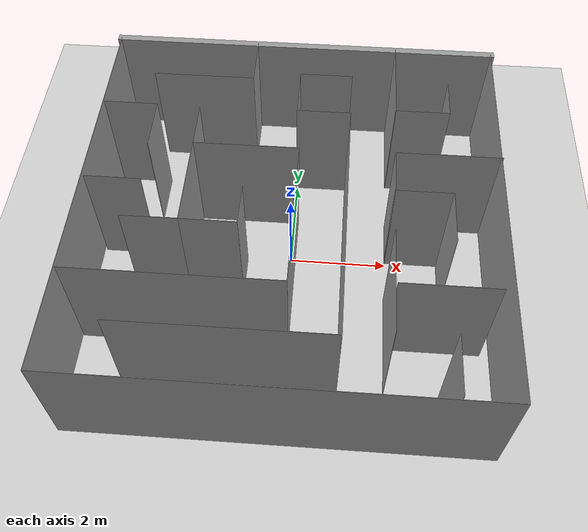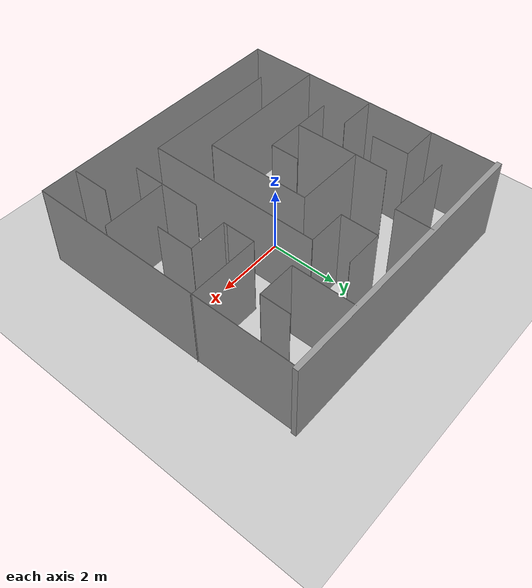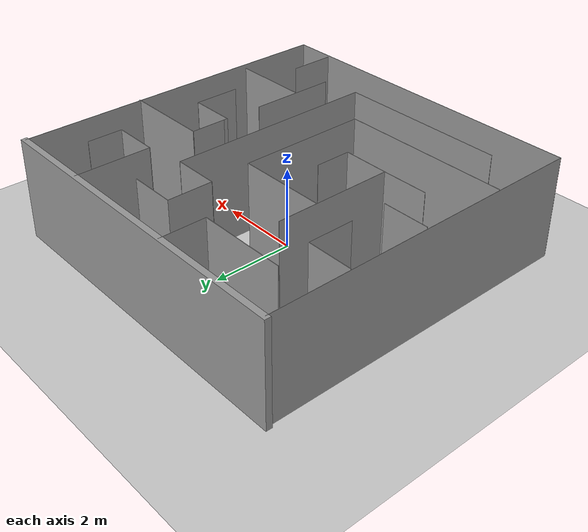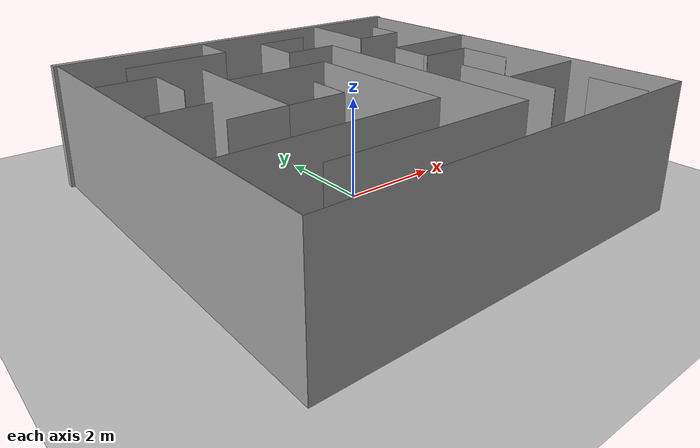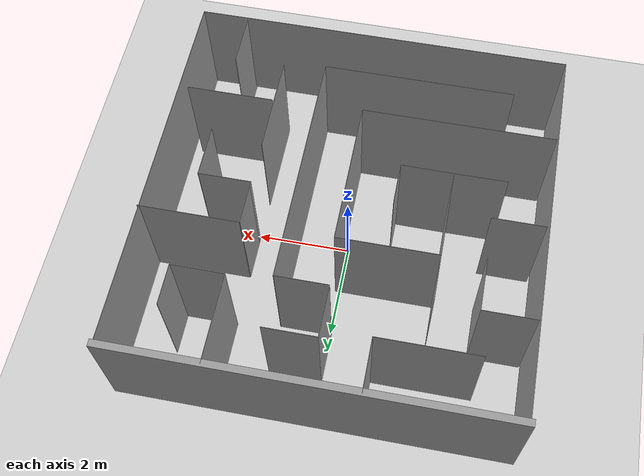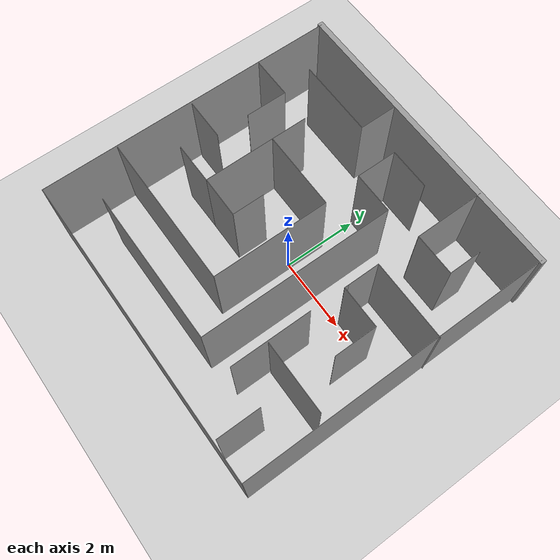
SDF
<sdf version='1.6'>
  <world name='default'>
    <!-- A global light source -->
    <include>
      <uri>model://sun</uri>
    </include>

    <!-- A ground plane -->
    <include>
      <uri>model://ground_plane</uri>
    </include>

    <physics type="ode">
      <real_time_update_rate>1000.0</real_time_update_rate>
      <max_step_size>0.001</max_step_size>
      <real_time_factor>1</real_time_factor>
      <ode>
        <solver>
          <type>quick</type>
          <iters>150</iters>
          <precon_iters>0</precon_iters>
          <sor>1.400000</sor>
          <use_dynamic_moi_rescaling>1</use_dynamic_moi_rescaling>
        </solver>
        <constraints>
          <cfm>0.00001</cfm>
          <erp>0.2</erp>
          <contact_max_correcting_vel>2000.000000</contact_max_correcting_vel>
          <contact_surface_layer>0.01000</contact_surface_layer>
        </constraints>
      </ode>
    </physics>

    <!-- Load world -->
    <include>
      <uri>model://laberinto</uri>
    </include>

    <scene>
      <ambient>0.4 0.4 0.4 1</ambient>
      <background>0.7 0.7 0.7 1</background>
      <shadows>false</shadows>
    </scene>

    <gui fullscreen='0'>
      <camera name='user_camera'>
        <pose>1.5 1.5 6.2 0 1.57079 1.57079</pose>
        <view_controller>orbit</view_controller>
      </camera>
    </gui>
  </world>
</sdf>

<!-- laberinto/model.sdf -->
<sdf version='1.7'>
  <model name='laberinto'>
    <pose>0.003 -0.01 0 0 -0 0</pose>
    <link name='Wall_0'>
      <collision name='Wall_0_Collision'>
        <geometry>
          <box>
            <size>8.25 0.15 2.5</size>
          </box>
        </geometry>
        <pose>0 0 1.25 0 -0 0</pose>
      </collision>
      <visual name='Wall_0_Visual'>
        <pose>0 0 1.25 0 -0 0</pose>
        <geometry>
          <box>
            <size>8.25 0.15 2.5</size>
          </box>
        </geometry>
        <material>
          <script>
            <uri>file://media/materials/scripts/gazebo.material</uri>
            <name>Gazebo/Grey</name>
          </script>
          <ambient>1 1 1 1</ambient>
        </material>
        <meta>
          <layer>0</layer>
        </meta>
      </visual>
      <pose>0 4.015 0 0 -0 0</pose>
    </link>
    <link name='Wall_1'>
      <collision name='Wall_1_Collision'>
        <geometry>
          <box>
            <size>8.11 0.01 2.5</size>
          </box>
        </geometry>
        <pose>0 0 1.25 0 -0 0</pose>
      </collision>
      <visual name='Wall_1_Visual'>
        <pose>0 0 1.25 0 -0 0</pose>
        <geometry>
          <box>
            <size>8.11 0.01 2.5</size>
          </box>
        </geometry>
        <material>
          <script>
            <uri>file://media/materials/scripts/gazebo.material</uri>
            <name>Gazebo/Grey</name>
          </script>
          <ambient>1 1 1 1</ambient>
        </material>
        <meta>
          <layer>0</layer>
        </meta>
      </visual>
      <pose>4.05 -0.035 0 0 -0 -1.5708</pose>
    </link>
    <link name='Wall_11'>
      <collision name='Wall_11_Collision'>
        <geometry>
          <box>
            <size>2.85957 0.01 2.5</size>
          </box>
        </geometry>
        <pose>0 0 1.25 0 -0 0</pose>
      </collision>
      <visual name='Wall_11_Visual'>
        <pose>0 0 1.25 0 -0 0</pose>
        <geometry>
          <box>
            <size>2.85957 0.01 2.5</size>
          </box>
        </geometry>
        <material>
          <script>
            <uri>file://media/materials/scripts/gazebo.material</uri>
            <name>Gazebo/Grey</name>
          </script>
          <ambient>1 1 1 1</ambient>
        </material>
        <meta>
          <layer>0</layer>
        </meta>
      </visual>
      <pose>-2.031 0.552 0 0 -0 -1.5708</pose>
    </link>
    <link name='Wall_12'>
      <collision name='Wall_12_Collision'>
        <geometry>
          <box>
            <size>1.10985 0.01 2.5</size>
          </box>
        </geometry>
        <pose>0 0 1.25 0 -0 0</pose>
      </collision>
      <visual name='Wall_12_Visual'>
        <pose>0 0 1.25 0 -0 0</pose>
        <geometry>
          <box>
            <size>1.10985 0.01 2.5</size>
          </box>
        </geometry>
        <material>
          <script>
            <uri>file://media/materials/scripts/gazebo.material</uri>
            <name>Gazebo/Grey</name>
          </script>
          <ambient>1 1 1 1</ambient>
        </material>
        <meta>
          <layer>0</layer>
        </meta>
      </visual>
      <pose>-2.581 -0.8765 0 0 -0 -3.13523</pose>
    </link>
    <link name='Wall_14'>
      <collision name='Wall_14_Collision'>
        <geometry>
          <box>
            <size>1.1102 0.01 2.5</size>
          </box>
        </geometry>
        <pose>0 0 1.25 0 -0 0</pose>
      </collision>
      <visual name='Wall_14_Visual'>
        <pose>0 0 1.25 0 -0 0</pose>
        <geometry>
          <box>
            <size>1.1102 0.01 2.5</size>
          </box>
        </geometry>
        <material>
          <script>
            <uri>file://media/materials/scripts/gazebo.material</uri>
            <name>Gazebo/Grey</name>
          </script>
          <ambient>1 1 1 1</ambient>
        </material>
        <meta>
          <layer>0</layer>
        </meta>
      </visual>
      <pose>-1.481 -0.8765 0 0 -0 -0.006364</pose>
    </link>
    <link name='Wall_15'>
      <collision name='Wall_15_Collision'>
        <geometry>
          <box>
            <size>0.859866 0.01 2.5</size>
          </box>
        </geometry>
        <pose>0 0 1.25 0 -0 0</pose>
      </collision>
      <visual name='Wall_15_Visual'>
        <pose>0 0 1.25 0 -0 0</pose>
        <geometry>
          <box>
            <size>0.859866 0.01 2.5</size>
          </box>
        </geometry>
        <material>
          <script>
            <uri>file://media/materials/scripts/gazebo.material</uri>
            <name>Gazebo/Grey</name>
          </script>
          <ambient>1 1 1 1</ambient>
        </material>
        <meta>
          <layer>0</layer>
        </meta>
      </visual>
      <pose>-0.931 -0.455 0 0 -0 1.5708</pose>
    </link>
    <link name='Wall_17'>
      <collision name='Wall_17_Collision'>
        <geometry>
          <box>
            <size>1.11033 0.01 2.5</size>
          </box>
        </geometry>
        <pose>0 0 1.25 0 -0 0</pose>
      </collision>
      <visual name='Wall_17_Visual'>
        <pose>0 0 1.25 0 -0 0</pose>
        <geometry>
          <box>
            <size>1.11033 0.01 2.5</size>
          </box>
        </geometry>
        <material>
          <script>
            <uri>file://media/materials/scripts/gazebo.material</uri>
            <name>Gazebo/Grey</name>
          </script>
          <ambient>1 1 1 1</ambient>
        </material>
        <meta>
          <layer>0</layer>
        </meta>
      </visual>
      <pose>-3.443 0.015 0 0 -0 3.14159</pose>
    </link>
    <link name='Wall_19'>
      <collision name='Wall_19_Collision'>
        <geometry>
          <box>
            <size>2.10967 0.01 2.5</size>
          </box>
        </geometry>
        <pose>0 0 1.25 0 -0 0</pose>
      </collision>
      <visual name='Wall_19_Visual'>
        <pose>0 0 1.25 0 -0 0</pose>
        <geometry>
          <box>
            <size>2.10967 0.01 2.5</size>
          </box>
        </geometry>
        <material>
          <script>
            <uri>file://media/materials/scripts/gazebo.material</uri>
            <name>Gazebo/Grey</name>
          </script>
          <ambient>1 1 1 1</ambient>
        </material>
        <meta>
          <layer>0</layer>
        </meta>
      </visual>
      <pose>-0.969 1.015 0 0 -0 0</pose>
    </link>
    <link name='Wall_2'>
      <collision name='Wall_2_Collision'>
        <geometry>
          <box>
            <size>8.11 0.01 2.5</size>
          </box>
        </geometry>
        <pose>0 0 1.25 0 -0 0</pose>
      </collision>
      <visual name='Wall_2_Visual'>
        <pose>0 0 1.25 0 -0 0</pose>
        <geometry>
          <box>
            <size>8.11 0.01 2.5</size>
          </box>
        </geometry>
        <material>
          <script>
            <uri>file://media/materials/scripts/gazebo.material</uri>
            <name>Gazebo/Grey</name>
          </script>
          <ambient>1 1 1 1</ambient>
        </material>
        <meta>
          <layer>0</layer>
        </meta>
      </visual>
      <pose>0 -4.085 0 0 -0 3.14159</pose>
    </link>
    <link name='Wall_20'>
      <collision name='Wall_20_Collision'>
        <geometry>
          <box>
            <size>3.10963 0.01 2.5</size>
          </box>
        </geometry>
        <pose>0 0 1.25 0 -0 0</pose>
      </collision>
      <visual name='Wall_20_Visual'>
        <pose>0 0 1.25 0 -0 0</pose>
        <geometry>
          <box>
            <size>3.10963 0.01 2.5</size>
          </box>
        </geometry>
        <material>
          <script>
            <uri>file://media/materials/scripts/gazebo.material</uri>
            <name>Gazebo/Grey</name>
          </script>
          <ambient>1 1 1 1</ambient>
        </material>
        <meta>
          <layer>0</layer>
        </meta>
      </visual>
      <pose>0.081 -0.535 0 0 -0 -1.5708</pose>
    </link>
    <link name='Wall_21'>
      <collision name='Wall_21_Collision'>
        <geometry>
          <box>
            <size>4.11033 0.01 2.5</size>
          </box>
        </geometry>
        <pose>0 0 1.25 0 -0 0</pose>
      </collision>
      <visual name='Wall_21_Visual'>
        <pose>0 0 1.25 0 -0 0</pose>
        <geometry>
          <box>
            <size>4.11033 0.01 2.5</size>
          </box>
        </geometry>
        <material>
          <script>
            <uri>file://media/materials/scripts/gazebo.material</uri>
            <name>Gazebo/Grey</name>
          </script>
          <ambient>1 1 1 1</ambient>
        </material>
        <meta>
          <layer>0</layer>
        </meta>
      </visual>
      <pose>-1.969 -2.085 0 0 -0 3.14159</pose>
    </link>
    <link name='Wall_26'>
      <collision name='Wall_26_Collision'>
        <geometry>
          <box>
            <size>4.10964 0.01 2.5</size>
          </box>
        </geometry>
        <pose>0 0 1.25 0 -0 0</pose>
      </collision>
      <visual name='Wall_26_Visual'>
        <pose>0 0 1.25 0 -0 0</pose>
        <geometry>
          <box>
            <size>4.10964 0.01 2.5</size>
          </box>
        </geometry>
        <material>
          <script>
            <uri>file://media/materials/scripts/gazebo.material</uri>
            <name>Gazebo/Grey</name>
          </script>
          <ambient>1 1 1 1</ambient>
        </material>
        <meta>
          <layer>0</layer>
        </meta>
      </visual>
      <pose>-0.978 -3.074 0 0 -0 0</pose>
    </link>
    <link name='Wall_27'>
      <collision name='Wall_27_Collision'>
        <geometry>
          <box>
            <size>5.13 0.01 2.5</size>
          </box>
        </geometry>
        <pose>0 0 1.25 0 -0 0</pose>
      </collision>
      <visual name='Wall_27_Visual'>
        <pose>0 0 1.25 0 -0 0</pose>
        <geometry>
          <box>
            <size>5.13 0.01 2.5</size>
          </box>
        </geometry>
        <material>
          <script>
            <uri>file://media/materials/scripts/gazebo.material</uri>
            <name>Gazebo/Grey</name>
          </script>
          <ambient>1 1 1 1</ambient>
        </material>
        <meta>
          <layer>0</layer>
        </meta>
      </visual>
      <pose>1.072 -0.514 0 0 -0 1.5708</pose>
    </link>
    <link name='Wall_28'>
      <collision name='Wall_28_Collision'>
        <geometry>
          <box>
            <size>1.11036 0.01 2.5</size>
          </box>
        </geometry>
        <pose>0 0 1.25 0 -0 0</pose>
      </collision>
      <visual name='Wall_28_Visual'>
        <pose>0 0 1.25 0 -0 0</pose>
        <geometry>
          <box>
            <size>1.11036 0.01 2.5</size>
          </box>
        </geometry>
        <material>
          <script>
            <uri>file://media/materials/scripts/gazebo.material</uri>
            <name>Gazebo/Grey</name>
          </script>
          <ambient>1 1 1 1</ambient>
        </material>
        <meta>
          <layer>0</layer>
        </meta>
      </visual>
      <pose>0.522 2.046 0 0 -0 3.14159</pose>
    </link>
    <link name='Wall_29'>
      <collision name='Wall_29_Collision'>
        <geometry>
          <box>
            <size>1.0899 0.01 2.5</size>
          </box>
        </geometry>
        <pose>0 0 1.25 0 -0 0</pose>
      </collision>
      <visual name='Wall_29_Visual'>
        <pose>0 0 1.25 0 -0 0</pose>
        <geometry>
          <box>
            <size>1.0899 0.01 2.5</size>
          </box>
        </geometry>
        <material>
          <script>
            <uri>file://media/materials/scripts/gazebo.material</uri>
            <name>Gazebo/Grey</name>
          </script>
          <ambient>1 1 1 1</ambient>
        </material>
        <meta>
          <layer>0</layer>
        </meta>
      </visual>
      <pose>-0.028 2.586 0 0 -0 1.5708</pose>
    </link>
    <link name='Wall_3'>
      <collision name='Wall_3_Collision'>
        <geometry>
          <box>
            <size>8.10981 0.01 2.5</size>
          </box>
        </geometry>
        <pose>0 0 1.25 0 -0 0</pose>
      </collision>
      <visual name='Wall_3_Visual'>
        <pose>0 0 1.25 0 -0 0</pose>
        <geometry>
          <box>
            <size>8.10981 0.01 2.5</size>
          </box>
        </geometry>
        <material>
          <script>
            <uri>file://media/materials/scripts/gazebo.material</uri>
            <name>Gazebo/Grey</name>
          </script>
          <ambient>1 1 1 1</ambient>
        </material>
        <meta>
          <layer>0</layer>
        </meta>
      </visual>
      <pose>-4.05 -0.035 0 0 -0 1.5708</pose>
    </link>
    <link name='Wall_30'>
      <collision name='Wall_30_Collision'>
        <geometry>
          <box>
            <size>1.10964 0.01 2.5</size>
          </box>
        </geometry>
        <pose>0 0 1.25 0 -0 0</pose>
      </collision>
      <visual name='Wall_30_Visual'>
        <pose>0 0 1.25 0 -0 0</pose>
        <geometry>
          <box>
            <size>1.10964 0.01 2.5</size>
          </box>
        </geometry>
        <material>
          <script>
            <uri>file://media/materials/scripts/gazebo.material</uri>
            <name>Gazebo/Grey</name>
          </script>
          <ambient>1 1 1 1</ambient>
        </material>
        <meta>
          <layer>0</layer>
        </meta>
      </visual>
      <pose>0.522 3.126 0 0 -0 0</pose>
    </link>
    <link name='Wall_32'>
      <collision name='Wall_32_Collision'>
        <geometry>
          <box>
            <size>1.86013 0.01 2.5</size>
          </box>
        </geometry>
        <pose>0 0 1.25 0 -0 0</pose>
      </collision>
      <visual name='Wall_32_Visual'>
        <pose>0 0 1.25 0 -0 0</pose>
        <geometry>
          <box>
            <size>1.86013 0.01 2.5</size>
          </box>
        </geometry>
        <material>
          <script>
            <uri>file://media/materials/scripts/gazebo.material</uri>
            <name>Gazebo/Grey</name>
          </script>
          <ambient>1 1 1 1</ambient>
        </material>
        <meta>
          <layer>0</layer>
        </meta>
      </visual>
      <pose>1.99 3.104 0 0 -0 -1.5708</pose>
    </link>
    <link name='Wall_33'>
      <collision name='Wall_33_Collision'>
        <geometry>
          <box>
            <size>1.11025 0.01 2.5</size>
          </box>
        </geometry>
        <pose>0 0 1.25 0 -0 0</pose>
      </collision>
      <visual name='Wall_33_Visual'>
        <pose>0 0 1.25 0 -0 0</pose>
        <geometry>
          <box>
            <size>1.11025 0.01 2.5</size>
          </box>
        </geometry>
        <material>
          <script>
            <uri>file://media/materials/scripts/gazebo.material</uri>
            <name>Gazebo/Grey</name>
          </script>
          <ambient>1 1 1 1</ambient>
        </material>
        <meta>
          <layer>0</layer>
        </meta>
      </visual>
      <pose>2.54 2.179 0 0 -0 0</pose>
    </link>
    <link name='Wall_34'>
      <collision name='Wall_34_Collision'>
        <geometry>
          <box>
            <size>0.859873 0.01 2.5</size>
          </box>
        </geometry>
        <pose>0 0 1.25 0 -0 0</pose>
      </collision>
      <visual name='Wall_34_Visual'>
        <pose>0 0 1.25 0 -0 0</pose>
        <geometry>
          <box>
            <size>0.859873 0.01 2.5</size>
          </box>
        </geometry>
        <material>
          <script>
            <uri>file://media/materials/scripts/gazebo.material</uri>
            <name>Gazebo/Grey</name>
          </script>
          <ambient>1 1 1 1</ambient>
        </material>
        <meta>
          <layer>0</layer>
        </meta>
      </visual>
      <pose>3.09 2.604 0 0 -0 1.5708</pose>
    </link>
    <link name='Wall_36'>
      <collision name='Wall_36_Collision'>
        <geometry>
          <box>
            <size>2.11 0.01 2.5</size>
          </box>
        </geometry>
        <pose>0 0 1.25 0 -0 0</pose>
      </collision>
      <visual name='Wall_36_Visual'>
        <pose>0 0 1.25 0 -0 0</pose>
        <geometry>
          <box>
            <size>2.11 0.01 2.5</size>
          </box>
        </geometry>
        <material>
          <script>
            <uri>file://media/materials/scripts/gazebo.material</uri>
            <name>Gazebo/Grey</name>
          </script>
          <ambient>1 1 1 1</ambient>
        </material>
        <meta>
          <layer>0</layer>
        </meta>
      </visual>
      <pose>3.032 1.032 0 0 -0 3.14159</pose>
    </link>
    <link name='Wall_37'>
      <collision name='Wall_37_Collision'>
        <geometry>
          <box>
            <size>0.860049 0.01 2.5</size>
          </box>
        </geometry>
        <pose>0 0 1.25 0 -0 0</pose>
      </collision>
      <visual name='Wall_37_Visual'>
        <pose>0 0 1.25 0 -0 0</pose>
        <geometry>
          <box>
            <size>0.860049 0.01 2.5</size>
          </box>
        </geometry>
        <material>
          <script>
            <uri>file://media/materials/scripts/gazebo.material</uri>
            <name>Gazebo/Grey</name>
          </script>
          <ambient>1 1 1 1</ambient>
        </material>
        <meta>
          <layer>0</layer>
        </meta>
      </visual>
      <pose>1.982 0.607 0 0 -0 -1.5708</pose>
    </link>
    <link name='Wall_38'>
      <collision name='Wall_38_Collision'>
        <geometry>
          <box>
            <size>0.11 0.01 2.5</size>
          </box>
        </geometry>
        <pose>0 0 1.25 0 -0 0</pose>
      </collision>
      <visual name='Wall_38_Visual'>
        <pose>0 0 1.25 0 -0 0</pose>
        <geometry>
          <box>
            <size>0.11 0.01 2.5</size>
          </box>
        </geometry>
        <material>
          <script>
            <uri>file://media/materials/scripts/gazebo.material</uri>
            <name>Gazebo/Grey</name>
          </script>
          <ambient>1 1 1 1</ambient>
        </material>
        <meta>
          <layer>0</layer>
        </meta>
      </visual>
      <pose>1.982 0.132 0 0 -0 -1.5708</pose>
    </link>
    <link name='Wall_39'>
      <collision name='Wall_39_Collision'>
        <geometry>
          <box>
            <size>1.11 0.01 2.5</size>
          </box>
        </geometry>
        <pose>0 0 1.25 0 -0 0</pose>
      </collision>
      <visual name='Wall_39_Visual'>
        <pose>0 0 1.25 0 -0 0</pose>
        <geometry>
          <box>
            <size>1.11 0.01 2.5</size>
          </box>
        </geometry>
        <material>
          <script>
            <uri>file://media/materials/scripts/gazebo.material</uri>
            <name>Gazebo/Grey</name>
          </script>
          <ambient>1 1 1 1</ambient>
        </material>
        <meta>
          <layer>0</layer>
        </meta>
      </visual>
      <pose>2.532 0.082 0 0 -0 0</pose>
    </link>
    <link name='Wall_40'>
      <collision name='Wall_40_Collision'>
        <geometry>
          <box>
            <size>1.11005 0.01 2.5</size>
          </box>
        </geometry>
        <pose>0 0 1.25 0 -0 0</pose>
      </collision>
      <visual name='Wall_40_Visual'>
        <pose>0 0 1.25 0 -0 0</pose>
        <geometry>
          <box>
            <size>1.11005 0.01 2.5</size>
          </box>
        </geometry>
        <material>
          <script>
            <uri>file://media/materials/scripts/gazebo.material</uri>
            <name>Gazebo/Grey</name>
          </script>
          <ambient>1 1 1 1</ambient>
        </material>
        <meta>
          <layer>0</layer>
        </meta>
      </visual>
      <pose>3.082 -0.468 0 0 -0 -1.5708</pose>
    </link>
    <link name='Wall_42'>
      <collision name='Wall_42_Collision'>
        <geometry>
          <box>
            <size>2.10961 0.01 2.5</size>
          </box>
        </geometry>
        <pose>0 0 1.25 0 -0 0</pose>
      </collision>
      <visual name='Wall_42_Visual'>
        <pose>0 0 1.25 0 -0 0</pose>
        <geometry>
          <box>
            <size>2.10961 0.01 2.5</size>
          </box>
        </geometry>
        <material>
          <script>
            <uri>file://media/materials/scripts/gazebo.material</uri>
            <name>Gazebo/Grey</name>
          </script>
          <ambient>1 1 1 1</ambient>
        </material>
        <meta>
          <layer>0</layer>
        </meta>
      </visual>
      <pose>1.97 -1.889 0 0 -0 -1.5708</pose>
    </link>
    <link name='Wall_44'>
      <collision name='Wall_44_Collision'>
        <geometry>
          <box>
            <size>1.86037 0.01 2.5</size>
          </box>
        </geometry>
        <pose>0 0 1.25 0 -0 0</pose>
      </collision>
      <visual name='Wall_44_Visual'>
        <pose>0 0 1.25 0 -0 0</pose>
        <geometry>
          <box>
            <size>1.86037 0.01 2.5</size>
          </box>
        </geometry>
        <material>
          <script>
            <uri>file://media/materials/scripts/gazebo.material</uri>
            <name>Gazebo/Grey</name>
          </script>
          <ambient>1 1 1 1</ambient>
        </material>
        <meta>
          <layer>0</layer>
        </meta>
      </visual>
      <pose>2.935 -1.985 0 0 -0 0</pose>
    </link>
    <link name='Wall_46'>
      <collision name='Wall_46_Collision'>
        <geometry>
          <box>
            <size>1.11044 0.01 2.5</size>
          </box>
        </geometry>
        <pose>0 0 1.25 0 -0 0</pose>
      </collision>
      <visual name='Wall_46_Visual'>
        <pose>0 0 1.25 0 -0 0</pose>
        <geometry>
          <box>
            <size>1.11044 0.01 2.5</size>
          </box>
        </geometry>
        <material>
          <script>
            <uri>file://media/materials/scripts/gazebo.material</uri>
            <name>Gazebo/Grey</name>
          </script>
          <ambient>1 1 1 1</ambient>
        </material>
        <meta>
          <layer>0</layer>
        </meta>
      </visual>
      <pose>3.036 -3.467 0 0 -0 1.5708</pose>
    </link>
    <link name='Wall_5'>
      <collision name='Wall_5_Collision'>
        <geometry>
          <box>
            <size>1.11 0.01 2.5</size>
          </box>
        </geometry>
        <pose>0 0 1.25 0 -0 0</pose>
      </collision>
      <visual name='Wall_5_Visual'>
        <pose>0 0 1.25 0 -0 0</pose>
        <geometry>
          <box>
            <size>1.11 0.01 2.5</size>
          </box>
        </geometry>
        <material>
          <script>
            <uri>file://media/materials/scripts/gazebo.material</uri>
            <name>Gazebo/Grey</name>
          </script>
          <ambient>1 1 1 1</ambient>
        </material>
        <meta>
          <layer>0</layer>
        </meta>
      </visual>
      <pose>-1.016 3.481 0 0 -0 -1.5708</pose>
    </link>
    <link name='Wall_6'>
      <collision name='Wall_6_Collision'>
        <geometry>
          <box>
            <size>2.10991 0.01 2.5</size>
          </box>
        </geometry>
        <pose>0 0 1.25 0 -0 0</pose>
      </collision>
      <visual name='Wall_6_Visual'>
        <pose>0 0 1.25 0 -0 0</pose>
        <geometry>
          <box>
            <size>2.10991 0.01 2.5</size>
          </box>
        </geometry>
        <material>
          <script>
            <uri>file://media/materials/scripts/gazebo.material</uri>
            <name>Gazebo/Grey</name>
          </script>
          <ambient>1 1 1 1</ambient>
        </material>
        <meta>
          <layer>0</layer>
        </meta>
      </visual>
      <pose>-2.066 2.931 0 0 -0 3.14159</pose>
    </link>
    <link name='Wall_8'>
      <collision name='Wall_8_Collision'>
        <geometry>
          <box>
            <size>1.10967 0.01 2.5</size>
          </box>
        </geometry>
        <pose>0 0 1.25 0 -0 0</pose>
      </collision>
      <visual name='Wall_8_Visual'>
        <pose>0 0 1.25 0 -0 0</pose>
        <geometry>
          <box>
            <size>1.10967 0.01 2.5</size>
          </box>
        </geometry>
        <material>
          <script>
            <uri>file://media/materials/scripts/gazebo.material</uri>
            <name>Gazebo/Grey</name>
          </script>
          <ambient>1 1 1 1</ambient>
        </material>
        <meta>
          <layer>0</layer>
        </meta>
      </visual>
      <pose>-3.47 2.027 0 0 -0 0</pose>
    </link>
    <link name='Wall_9'>
      <collision name='Wall_9_Collision'>
        <geometry>
          <box>
            <size>1.10963 0.01 2.5</size>
          </box>
        </geometry>
        <pose>0 0 1.25 0 -0 0</pose>
      </collision>
      <visual name='Wall_9_Visual'>
        <pose>0 0 1.25 0 -0 0</pose>
        <geometry>
          <box>
            <size>1.10963 0.01 2.5</size>
          </box>
        </geometry>
        <material>
          <script>
            <uri>file://media/materials/scripts/gazebo.material</uri>
            <name>Gazebo/Grey</name>
          </script>
          <ambient>1 1 1 1</ambient>
        </material>
        <meta>
          <layer>0</layer>
        </meta>
      </visual>
      <pose>-2.92 1.477 0 0 -0 -1.5708</pose>
    </link>
    <static>1</static>
  </model>
</sdf>
